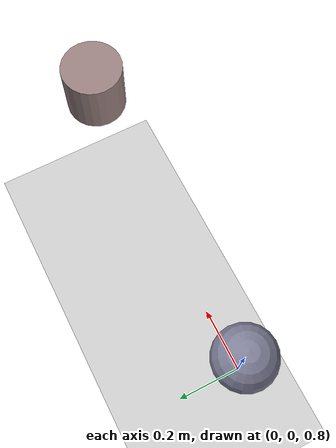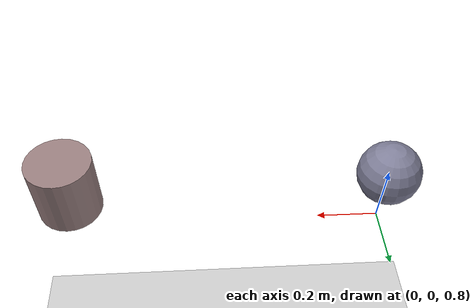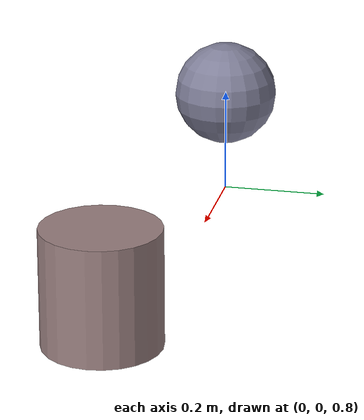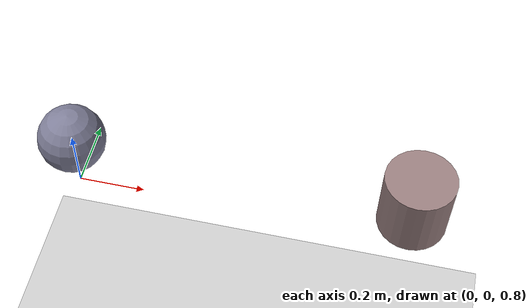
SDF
<?xml version="1.0"?>
<sdf version="1.6">
  <world name="default">

    <include>
      <uri>
        https://fuel.gazebosim.org/1.0/OpenRobotics/models/Ground Plane
      </uri>
    </include>

    <include>
      <uri>
        https://fuel.gazebosim.org/1.0/OpenRobotics/models/Sun
      </uri>
    </include>

    <!-- Edit world gravity here -->
    <gravity>0.0 0.0 0.0</gravity>

    <!-- Sphere object -->
    <model name='mysphere' canonical_link='body'>
      <pose relative_to='world'>0.0 0.0 1.0 0.0 0.0 0.0</pose>

      <link name='body'>
        <pose relative_to='__model__'>0.0 0.0 0.0 0.0 0.0 0.0</pose>

        <inertial>
          <mass>1.0</mass>
          <inertia>
            <ixx>0.004000</ixx>
            <ixy>0</ixy>
            <ixz>0</ixz>
            <iyy>0.004000</iyy>
            <iyz>0</iyz>
            <izz>0.004000</izz>
          </inertia>
        </inertial>

        <visual name='visual'>
          <geometry>
            <sphere>
              <radius>0.1</radius>
            </sphere>
          </geometry>
          <material>
            <ambient>0.5 0.5 0.5 1</ambient>
            <diffuse>0.5 0.5 0.6 1</diffuse>
            <specular>0.0 0.0 1.0 1</specular>
          </material>
        </visual>

        <collision name='collision'>
          <geometry>
            <sphere>
              <radius>0.1</radius>
            </sphere>
          </geometry>
        </collision>

      </link>

      <plugin filename="gz-sim-velocity-control-system"
        name="gz::sim::systems::VelocityControl">
      </plugin>

    </model>

    <!-- Sphere object -->
    <model name='mycylinder' canonical_link='body'>
      <pose relative_to='world'>1.0 0.0 1.0 0.0 0.0 0.0</pose>

      <link name='body'>
        <pose relative_to='__model__'>0.0 0.0 0.0 0.0 0.0 0.0</pose>

        <inertial>
          <mass>1.0</mass>
          <inertia>
            <ixx>0.005833</ixx>
            <ixy>0</ixy>
            <ixz>0</ixz>
            <iyy>0.005833</iyy>
            <iyz>0</iyz>
            <izz>0.005000</izz>
          </inertia>
        </inertial>

        <visual name='visual'>
          <geometry>
            <cylinder>
              <radius>0.1</radius>
              <length>0.2</length>
            </cylinder>
          </geometry>
          <material>
            <ambient>0.5 0.5 0.5 1</ambient>
            <diffuse>0.6 0.5 0.5 1</diffuse>
            <specular>1.0 0.0 0.0 1</specular>
          </material>
        </visual>

        <collision name='collision'>
          <geometry>
            <cylinder>
              <radius>0.1</radius>
              <length>0.2</length>
            </cylinder>
          </geometry>
        </collision>

      </link>

    </model>

  </world>
</sdf>
